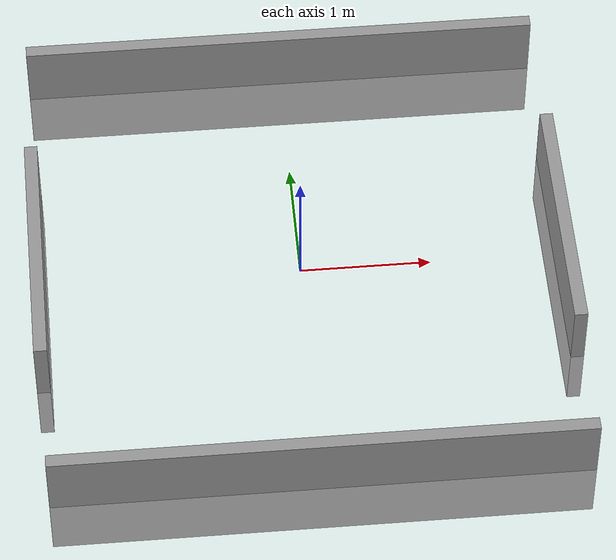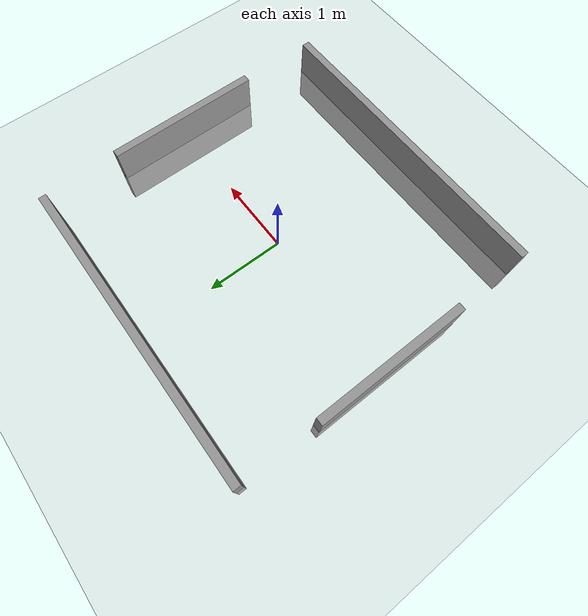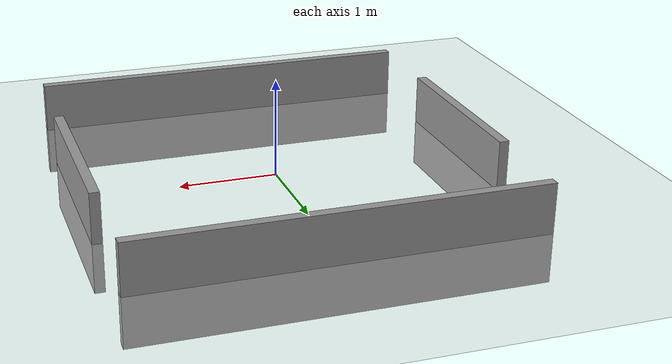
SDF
<?xml version="1.0" ?>
<sdf version="1.4">
  <world name="default">
    <!-- A global light source -->
    <include>
      <uri>model://sun</uri>
    </include>

    <!-- A ground plane -->
    <include>
      <uri>model://ground_plane</uri>
    </include>

    <!-- Physics settings -->
    <physics type="ode">
      <real_time_update_rate>1000.0</real_time_update_rate>
      <max_step_size>0.001</max_step_size>
      <real_time_factor>1</real_time_factor>
      <ode>
        <solver>
          <type>quick</type>
          <iters>150</iters>
          <precon_iters>0</precon_iters>
          <precon>world</precon>
          <thread_pool_size>8</thread_pool_size>
        </solver>
        <constraints>
          <cfm>1e-5</cfm>
          <erp>0.2</erp>
          <contact_max_correcting_vel>100.0</contact_max_correcting_vel>
          <contact_surface_layer>0.001</contact_surface_layer>
        </constraints>
      </ode>
    </physics>

    <!-- Obstacles -->
    <model name="wall_1">
      <pose>2.0 0 0 0 0 0</pose>
      <static>true</static>
      <link name="link">
        <collision name="collision">
          <geometry>
            <box>
              <size>0.1 2 1</size>
            </box>
          </geometry>
        </collision>
        <visual name="visual">
          <geometry>
            <box>
              <size>0.1 2 1</size>
            </box>
          </geometry>
          <material>
            <script>
              <uri>file://media/materials/scripts/gazebo.material</uri>
              <name>Gazebo/Gray</name>
            </script>
          </material>
        </visual>
      </link>
    </model>

    <model name="wall_2">
      <pose>-2.0 0 0 0 0 0</pose>
      <static>true</static>
      <link name="link">
        <collision name="collision">
          <geometry>
            <box>
              <size>0.1 2 1</size>
            </box>
          </geometry>
        </collision>
        <visual name="visual">
          <geometry>
            <box>
              <size>0.1 2 1</size>
            </box>
          </geometry>
          <material>
            <script>
              <uri>file://media/materials/scripts/gazebo.material</uri>
              <name>Gazebo/Gray</name>
            </script>
          </material>
        </visual>
      </link>
    </model>

    <model name="wall_3">
      <pose>0 2.0 0 0 0 0</pose>
      <static>true</static>
      <link name="link">
        <collision name="collision">
          <geometry>
            <box>
              <size>4 0.1 1</size>
            </box>
          </geometry>
        </collision>
        <visual name="visual">
          <geometry>
            <box>
              <size>4 0.1 1</size>
            </box>
          </geometry>
          <material>
            <script>
              <uri>file://media/materials/scripts/gazebo.material</uri>
              <name>Gazebo/Gray</name>
            </script>
          </material>
        </visual>
      </link>
    </model>

    <model name="wall_4">
      <pose>0 -2.0 0 0 0 0</pose>
      <static>true</static>
      <link name="link">
        <collision name="collision">
          <geometry>
            <box>
              <size>4 0.1 1</size>
            </box>
          </geometry>
        </collision>
        <visual name="visual">
          <geometry>
            <box>
              <size>4 0.1 1</size>
            </box>
          </geometry>
          <material>
            <script>
              <uri>file://media/materials/scripts/gazebo.material</uri>
              <name>Gazebo/Gray</name>
            </script>
          </material>
        </visual>
      </link>
    </model>

  </world>
</sdf>
